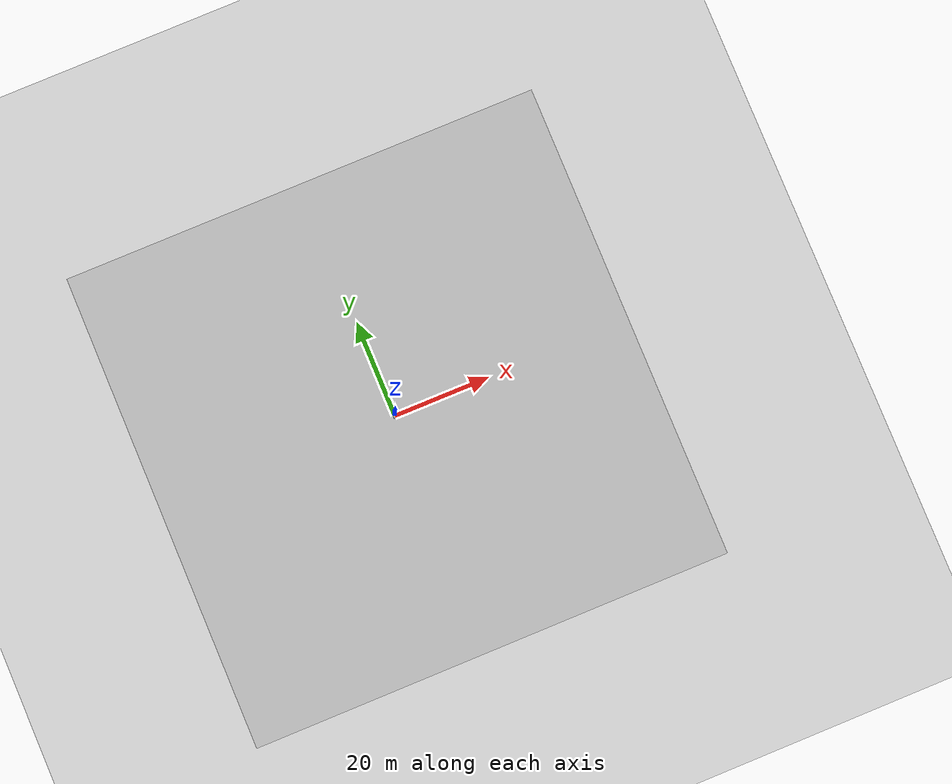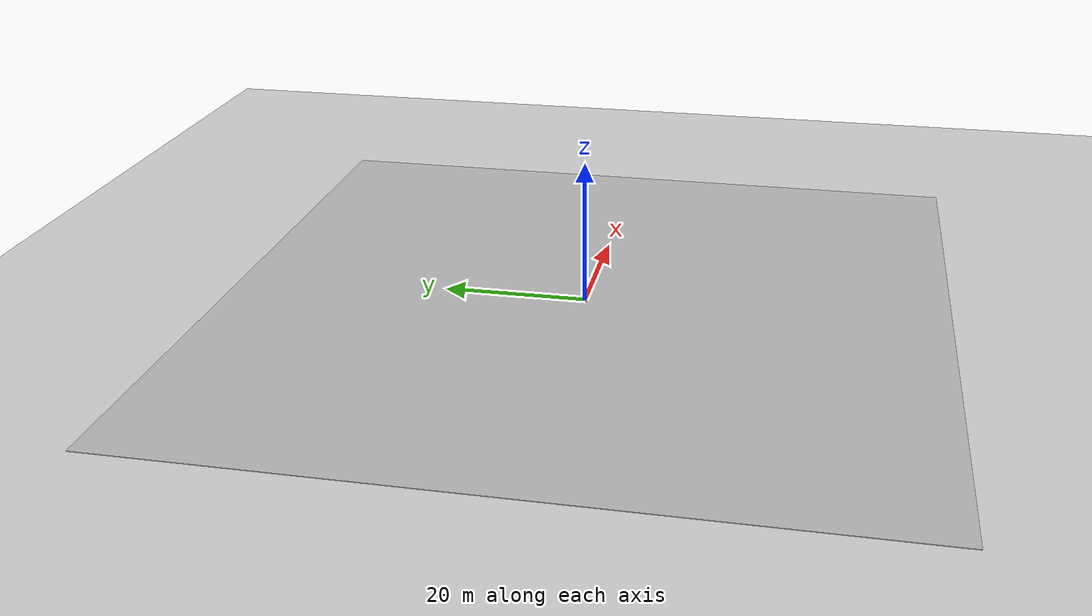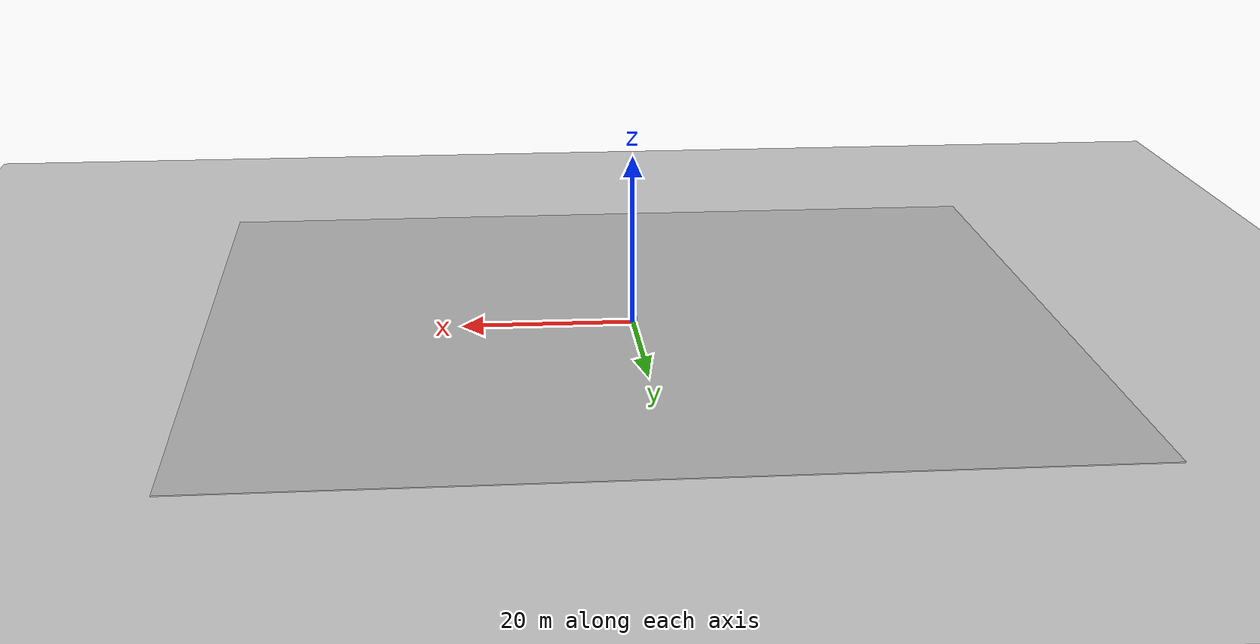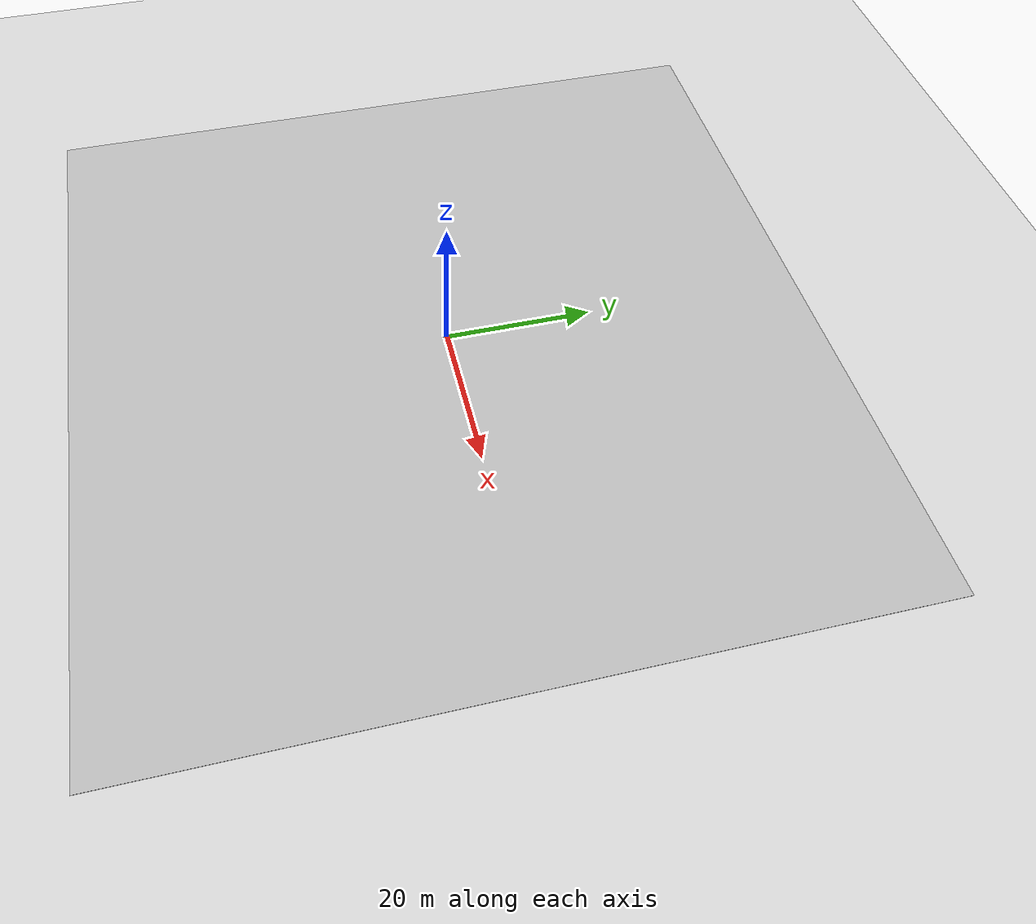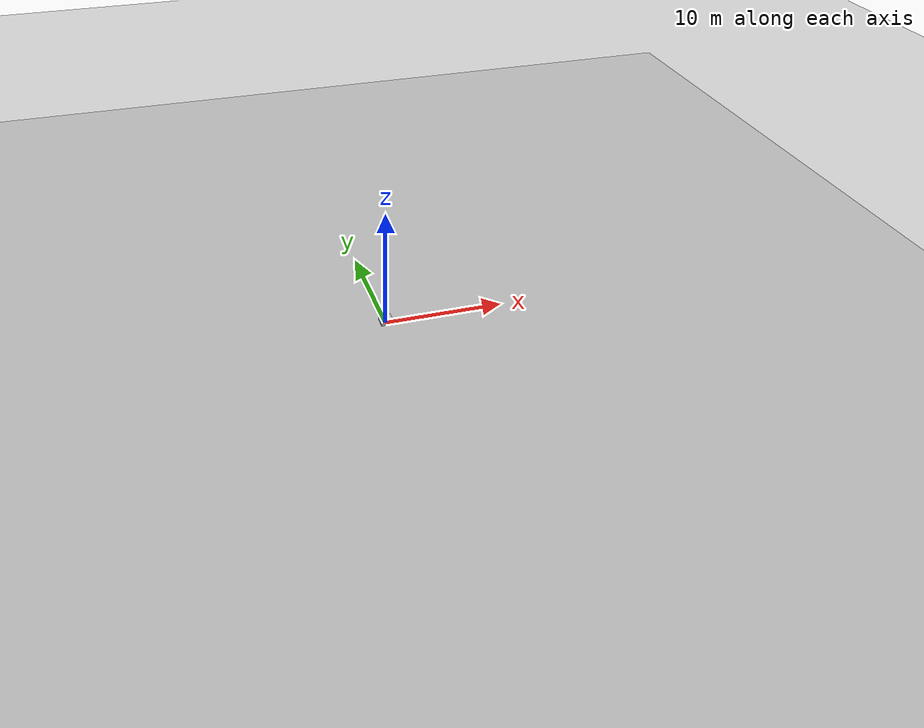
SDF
<sdf version='1.10'>
  <world name='empty'>
    <physics name='1ms' type='ignored'>
      <max_step_size>0.001</max_step_size>
      <real_time_factor>1</real_time_factor>
      <real_time_update_rate>1000</real_time_update_rate>
    </physics>
    <plugin name='gz::sim::systems::Physics' filename='gz-sim-physics-system'/>
    <plugin name='gz::sim::systems::UserCommands' filename='gz-sim-user-commands-system'/>
    <plugin name='gz::sim::systems::SceneBroadcaster' filename='gz-sim-scene-broadcaster-system'/>
    <plugin name='gz::sim::systems::Contact' filename='gz-sim-contact-system'/>
    <gravity>0 0 0</gravity>
    <magnetic_field>5.5644999999999998e-06 2.2875799999999999e-05 -4.2388400000000002e-05</magnetic_field>
    <atmosphere type='adiabatic'/>
    <scene>
      <ambient>0.400000006 0.400000006 0.400000006 1</ambient>
      <background>0.699999988 0.699999988 0.699999988 1</background>
      <shadows>true</shadows>
    </scene>

    <model name='ground_plane'>
      <static>true</static>
      <link name='link'>
        <collision name='collision'>
          <geometry>
            <plane>
              <normal>0 0 1</normal>
              <size>100 100</size>
            </plane>
          </geometry>
          <surface>
            <friction>
              <ode/>
            </friction>
            <bounce/>
            <contact/>
          </surface>
        </collision>
        <visual name='visual'>
          <geometry>
            <plane>
              <normal>0 0 1</normal>
              <size>100 100</size>
            </plane>
          </geometry>
          <material>
            <ambient>0.800000012 0.800000012 0.800000012 1</ambient>
            <diffuse>0.800000012 0.800000012 0.800000012 1</diffuse>
            <specular>0.800000012 0.800000012 0.800000012 1</specular>
          </material>
        </visual>
        <pose>0 0 0 0 0 0</pose>
        <inertial>
          <pose>0 0 0 0 0 0</pose>
          <mass>1</mass>
          <inertia>
            <ixx>1</ixx>
            <ixy>0</ixy>
            <ixz>0</ixz>
            <iyy>1</iyy>
            <iyz>0</iyz>
            <izz>1</izz>
          </inertia>
        </inertial>
        <enable_wind>false</enable_wind>
      </link>
      <pose>0 0 0 0 0 0</pose>
      <self_collide>false</self_collide>
    </model>

    <model name='Cam'>

      <link name='Base_link'>
        <inertial>
          <inertia>
            <ixx>0.16666</ixx>
            <ixy>0</ixy>
            <ixz>0</ixz>
            <iyy>0.16666</iyy>
            <iyz>0</iyz>
            <izz>0.16666</izz>
          </inertia>
          <mass>1</mass>
          <pose>0 0 0 0 0 0</pose>
        </inertial>
        <collision name='box_collision'>
          <geometry>
            <box>
              <size>100 100 0.1</size>
            </box>
          </geometry>
          <surface>
            <friction>
              <ode/>
            </friction>
            <bounce/>
            <contact/>
          </surface>
        </collision>
        <visual name='box_visual'>
          <geometry>
            <box>
              <size>100 100 0.1</size>
            </box>
          </geometry>
          <material>
            <ambient>0.300000012 0.300000012 0.300000012 1</ambient>
            <diffuse>0.699999988 0.699999988 0.699999988 1</diffuse>
            <specular>1 1 1 1</specular>
          </material>
        </visual>
        <pose>0 0 0 0 0 0</pose>
        <enable_wind>false</enable_wind>
      </link>

      <link name='Box_link'>
        <inertial>
          <inertia>
            <ixx>0.16666</ixx>
            <ixy>0</ixy>
            <ixz>0</ixz>
            <iyy>0.16666</iyy>
            <iyz>0</iyz>
            <izz>0.16666</izz>
          </inertia>
          <mass>1</mass>
          <pose>0 0 0 0 0 0</pose>
        </inertial>
        <collision name='box_collision'>
          <geometry>
            <box>
              <size>1 1 1</size>
            </box>
          </geometry>
          <surface>
            <friction>
              <ode/>
            </friction>
            <bounce/>
            <contact/>
          </surface>
        </collision>
        <visual name='box_visual'>
          <geometry>
            <box>
              <size>1 1 1</size>
            </box>
          </geometry>
          <material>
            <ambient>0.300000012 0.300000012 0.300000012 1</ambient>
            <diffuse>0.699999988 0.699999988 0.699999988 1</diffuse>
            <specular>1 1 1 1</specular>
          </material>
        </visual>
        <pose>0 0 0 0 0 0</pose>
        <enable_wind>false</enable_wind>
      </link>

      <static>false</static>
      <self_collide>false</self_collide>

      <!--connecting these links together using joints-->
      <joint name='joint_x' type='prismatic'>
      	<parent>Base_link</parent>
        <child>Box_link</child>
        <axis>
          <xyz> 1 0 0 </xyz>
        </axis>
      </joint>

      <plugin

        filename="libgz-sim-joint-position-controller-system.so"
        name="gz::sim::systems::JointPositionController">
        <joint_name>joint_x</joint_name>
      </plugin>

    </model>

    <light name='sun' type='directional'>
      <pose>0 0 10 0 0 0</pose>
      <cast_shadows>true</cast_shadows>
      <intensity>1</intensity>
      <direction>-0.5 0.10000000000000001 -0.90000000000000002</direction>
      <diffuse>0.800000012 0.800000012 0.800000012 1</diffuse>
      <specular>0.200000003 0.200000003 0.200000003 1</specular>
      <attenuation>
        <range>1000</range>
        <linear>0.01</linear>
        <constant>0.90000000000000002</constant>
        <quadratic>0.001</quadratic>
      </attenuation>
      <spot>
        <inner_angle>0</inner_angle>
        <outer_angle>0</outer_angle>
        <falloff>0</falloff>
      </spot>
    </light>
  </world>
</sdf>
